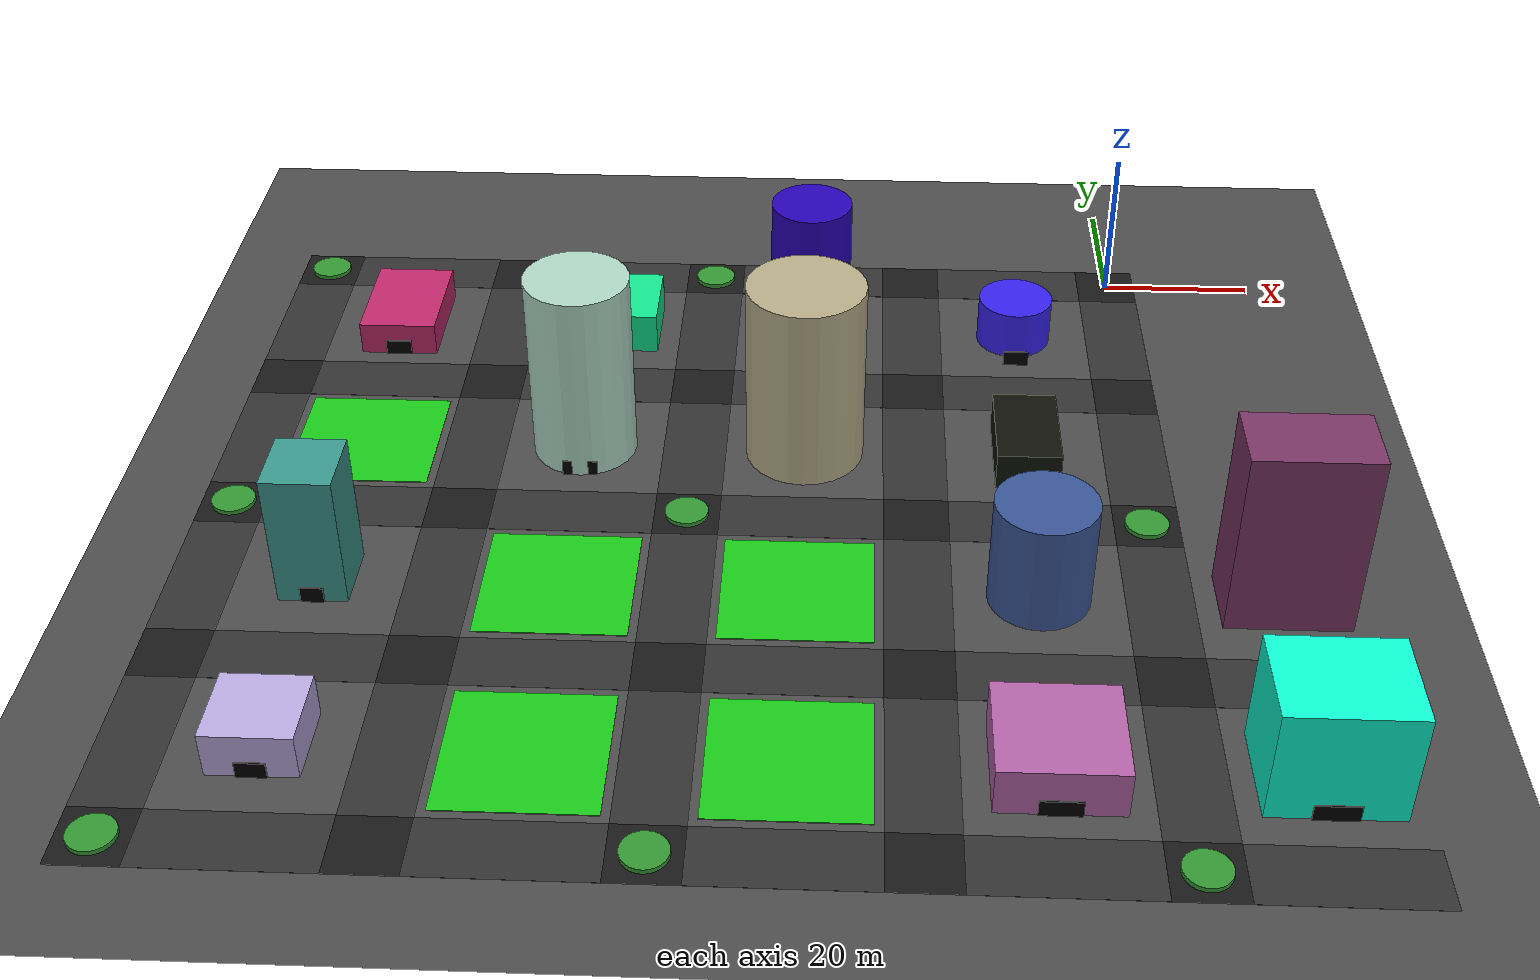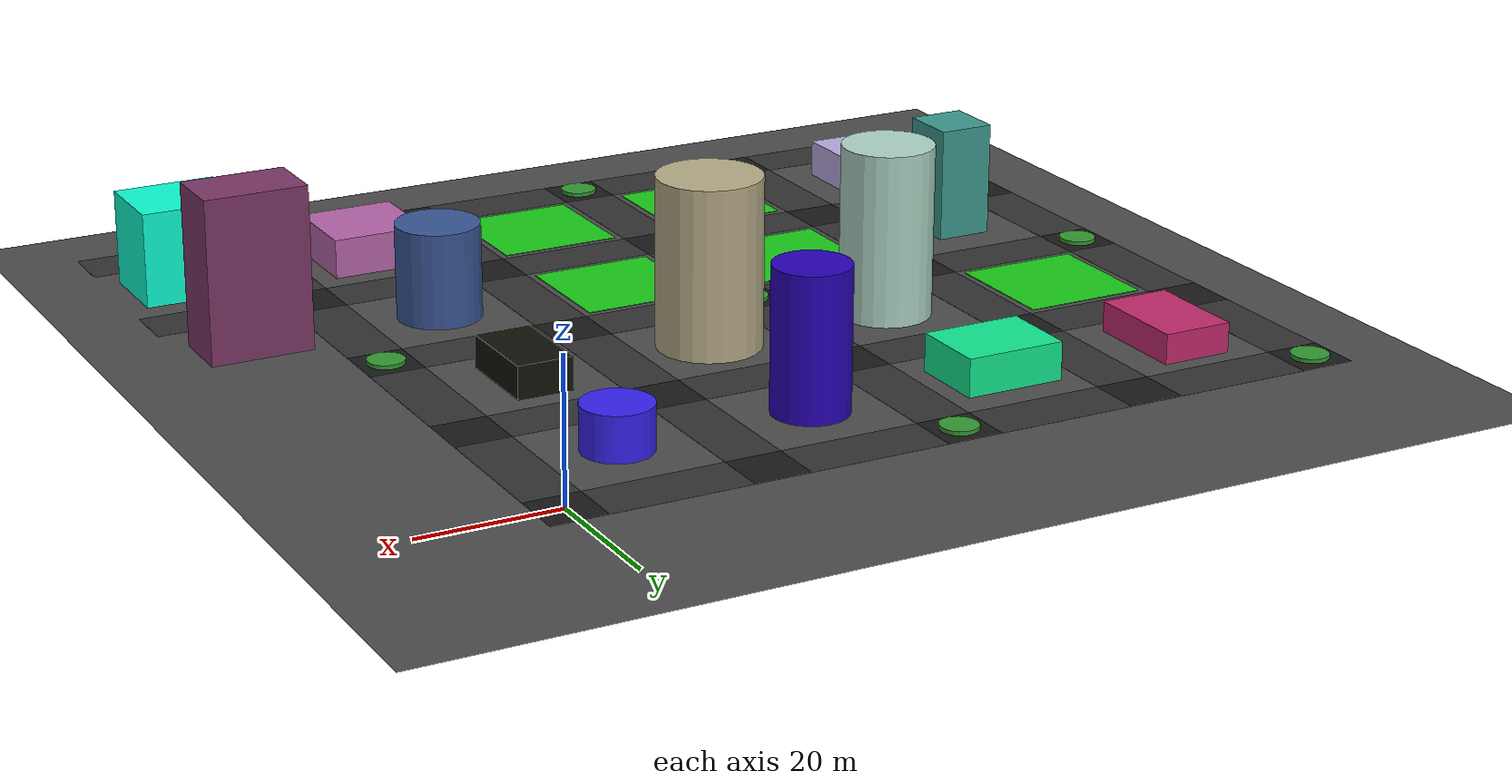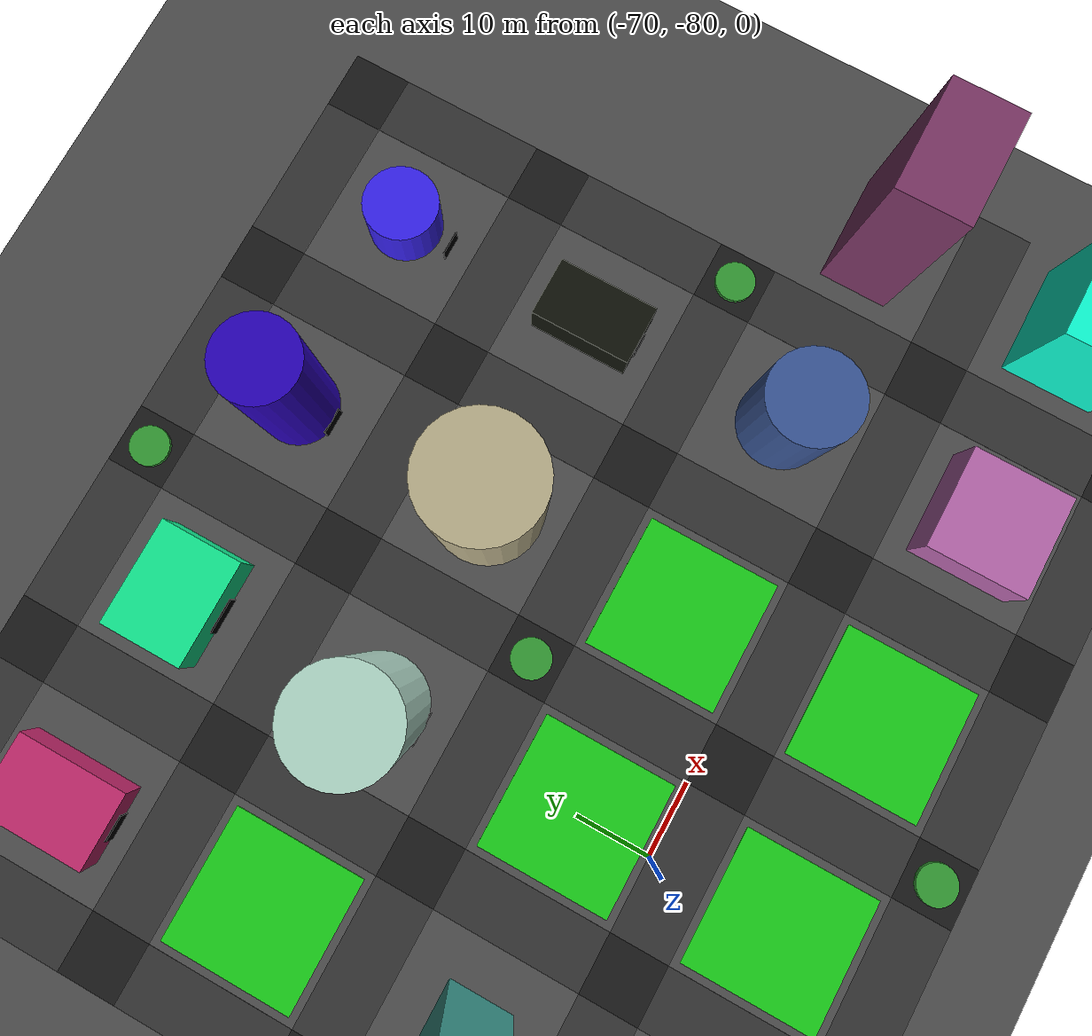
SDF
<sdf version="1.8">
 <world name="urban_city_rich">
  <model name="ground_plane">
   <static>true</static>
   <link name="link">
    <collision name="collision">
     <geometry><plane><normal>0 0 1</normal><size>200 200</size></plane></geometry>
     <surface><friction><ode><mu>100</mu><mu2>50</mu2></ode></friction></surface>
    </collision>
    <visual name="visual">
     <geometry><plane><normal>0 0 1</normal><size>200 200</size></plane></geometry>
     <material><ambient>0.3 0.3 0.3 1</ambient><diffuse>0.3 0.3 0.3 1</diffuse></material>
    </visual>
   </link>
  </model>
  <model name="road_inter_-4_-4">
   <static>true</static>
   <pose>-112.0 -112.0 0.01 0 0 0</pose>
   <link name="link">
    <visual name="vis">
     <geometry><box><size>8.0 8.0 0.02</size></box></geometry>
     <material><ambient>0.1 0.1 0.1 1</ambient><diffuse>0.1 0.1 0.1 1</diffuse></material>
    </visual>
   </link>
  </model>
  <model name="roundabout_-4_-4">
   <static>true</static>
   <pose>-112.0 -112.0 0.3 0 0 0</pose>
   <link name="link">
    <collision name="col">
     <geometry><cylinder><radius>2.6666666666666665</radius><length>0.6</length></cylinder></geometry>
    </collision>
    <visual name="vis">
     <geometry><cylinder><radius>2.6666666666666665</radius><length>0.6</length></cylinder></geometry>
     <material><ambient>0.2 0.6 0.2 1</ambient><diffuse>0.2 0.6 0.2 1</diffuse></material>
    </visual>
   </link>
  </model>
  <model name="road_h_-4_-4">
   <static>true</static>
   <pose>-98.0 -112.0 0.01 0 0 0</pose>
   <link name="link">
    <visual name="vis">
     <geometry><box><size>20.0 8.0 0.02</size></box></geometry>
     <material><ambient>0.2 0.2 0.2 1</ambient><diffuse>0.2 0.2 0.2 1</diffuse></material>
    </visual>
   </link>
  </model>
  <model name="road_v_-4_-4">
   <static>true</static>
   <pose>-112.0 -98.0 0.01 0 0 0</pose>
   <link name="link">
    <visual name="vis">
     <geometry><box><size>8.0 20.0 0.02</size></box></geometry>
     <material><ambient>0.2 0.2 0.2 1</ambient><diffuse>0.2 0.2 0.2 1</diffuse></material>
    </visual>
   </link>
  </model>
  <model name="bldg_0">
   <static>true</static>
   <pose>-98.0 -98.0 2.7501075522266696 0 0 0</pose>
   <link name="link">
    <collision name="col">
     <geometry><box><size>10.200234546952954 9.785685905190583 5.500215104453339</size></box></geometry>
    </collision>
    <visual name="vis">
     <geometry><box><size>10.200234546952954 9.785685905190583 5.500215104453339</size></box></geometry>
     <material>
      <ambient>0.7364712141640124 0.6766994874229113 0.8921795677048454 1</ambient>
      <diffuse>0.7364712141640124 0.6766994874229113 0.8921795677048454 1</diffuse>
     </material>
    </visual>
   </link>
  </model>
  <model name="door_0">
   <static>true</static>
   <pose>-98.0 -102.99284295259528 1.0 0 0 0</pose>
   <link name="link">
    <visual name="vis">
     <geometry><box><size>3.4000781823176514 0.2 2.0</size></box></geometry>
     <material><ambient>0 0 0 1</ambient><diffuse>0 0 0 1</diffuse></material>
    </visual>
   </link>
  </model>
  <model name="road_inter_-4_-3">
   <static>true</static>
   <pose>-112.0 -84.0 0.01 0 0 0</pose>
   <link name="link">
    <visual name="vis">
     <geometry><box><size>8.0 8.0 0.02</size></box></geometry>
     <material><ambient>0.1 0.1 0.1 1</ambient><diffuse>0.1 0.1 0.1 1</diffuse></material>
    </visual>
   </link>
  </model>
  <model name="road_h_-4_-3">
   <static>true</static>
   <pose>-98.0 -84.0 0.01 0 0 0</pose>
   <link name="link">
    <visual name="vis">
     <geometry><box><size>20.0 8.0 0.02</size></box></geometry>
     <material><ambient>0.2 0.2 0.2 1</ambient><diffuse>0.2 0.2 0.2 1</diffuse></material>
    </visual>
   </link>
  </model>
  <model name="road_v_-4_-3">
   <static>true</static>
   <pose>-112.0 -70.0 0.01 0 0 0</pose>
   <link name="link">
    <visual name="vis">
     <geometry><box><size>8.0 20.0 0.02</size></box></geometry>
     <material><ambient>0.2 0.2 0.2 1</ambient><diffuse>0.2 0.2 0.2 1</diffuse></material>
    </visual>
   </link>
  </model>
  <model name="bldg_1">
   <static>true</static>
   <pose>-98.0 -70.0 8.404925124490397 0 0 0</pose>
   <link name="link">
    <collision name="col">
     <geometry><box><size>8.254261435854268 8.74956191889274 16.809850248980794</size></box></geometry>
    </collision>
    <visual name="vis">
     <geometry><box><size>8.254261435854268 8.74956191889274 16.809850248980794</size></box></geometry>
     <material>
      <ambient>0.2326608933907396 0.6020187290499803 0.561245062938613 1</ambient>
      <diffuse>0.2326608933907396 0.6020187290499803 0.561245062938613 1</diffuse>
     </material>
    </visual>
   </link>
  </model>
  <model name="door_1">
   <static>true</static>
   <pose>-98.0 -74.47478095944636 1.0 0 0 0</pose>
   <link name="link">
    <visual name="vis">
     <geometry><box><size>2.751420478618089 0.2 2.0</size></box></geometry>
     <material><ambient>0 0 0 1</ambient><diffuse>0 0 0 1</diffuse></material>
    </visual>
   </link>
  </model>
  <model name="road_inter_-4_-2">
   <static>true</static>
   <pose>-112.0 -56.0 0.01 0 0 0</pose>
   <link name="link">
    <visual name="vis">
     <geometry><box><size>8.0 8.0 0.02</size></box></geometry>
     <material><ambient>0.1 0.1 0.1 1</ambient><diffuse>0.1 0.1 0.1 1</diffuse></material>
    </visual>
   </link>
  </model>
  <model name="roundabout_-4_-2">
   <static>true</static>
   <pose>-112.0 -56.0 0.3 0 0 0</pose>
   <link name="link">
    <collision name="col">
     <geometry><cylinder><radius>2.6666666666666665</radius><length>0.6</length></cylinder></geometry>
    </collision>
    <visual name="vis">
     <geometry><cylinder><radius>2.6666666666666665</radius><length>0.6</length></cylinder></geometry>
     <material><ambient>0.2 0.6 0.2 1</ambient><diffuse>0.2 0.6 0.2 1</diffuse></material>
    </visual>
   </link>
  </model>
  <model name="road_h_-4_-2">
   <static>true</static>
   <pose>-98.0 -56.0 0.01 0 0 0</pose>
   <link name="link">
    <visual name="vis">
     <geometry><box><size>20.0 8.0 0.02</size></box></geometry>
     <material><ambient>0.2 0.2 0.2 1</ambient><diffuse>0.2 0.2 0.2 1</diffuse></material>
    </visual>
   </link>
  </model>
  <model name="road_v_-4_-2">
   <static>true</static>
   <pose>-112.0 -42.0 0.01 0 0 0</pose>
   <link name="link">
    <visual name="vis">
     <geometry><box><size>8.0 20.0 0.02</size></box></geometry>
     <material><ambient>0.2 0.2 0.2 1</ambient><diffuse>0.2 0.2 0.2 1</diffuse></material>
    </visual>
   </link>
  </model>
  <model name="park_-4_-2">
   <static>true</static>
   <pose>-98.0 -42.0 0.05 0 0 0</pose>
   <link name="link">
    <visual name="vis">
     <geometry><box><size>18.0 18.0 0.1</size></box></geometry>
     <material><ambient>0.1 0.8 0.1 1</ambient><diffuse>0.1 0.8 0.1 1</diffuse></material>
    </visual>
   </link>
  </model>
  <model name="road_inter_-4_-1">
   <static>true</static>
   <pose>-112.0 -28.0 0.01 0 0 0</pose>
   <link name="link">
    <visual name="vis">
     <geometry><box><size>8.0 8.0 0.02</size></box></geometry>
     <material><ambient>0.1 0.1 0.1 1</ambient><diffuse>0.1 0.1 0.1 1</diffuse></material>
    </visual>
   </link>
  </model>
  <model name="road_h_-4_-1">
   <static>true</static>
   <pose>-98.0 -28.0 0.01 0 0 0</pose>
   <link name="link">
    <visual name="vis">
     <geometry><box><size>20.0 8.0 0.02</size></box></geometry>
     <material><ambient>0.2 0.2 0.2 1</ambient><diffuse>0.2 0.2 0.2 1</diffuse></material>
    </visual>
   </link>
  </model>
  <model name="road_v_-4_-1">
   <static>true</static>
   <pose>-112.0 -14.0 0.01 0 0 0</pose>
   <link name="link">
    <visual name="vis">
     <geometry><box><size>8.0 20.0 0.02</size></box></geometry>
     <material><ambient>0.2 0.2 0.2 1</ambient><diffuse>0.2 0.2 0.2 1</diffuse></material>
    </visual>
   </link>
  </model>
  <model name="bldg_2">
   <static>true</static>
   <pose>-98.0 -14.0 2.1738135694257803 0 0 0</pose>
   <link name="link">
    <collision name="col">
     <geometry><box><size>10.225525665845302 14.954402566343472 4.347627138851561</size></box></geometry>
    </collision>
    <visual name="vis">
     <geometry><box><size>10.225525665845302 14.954402566343472 4.347627138851561</size></box></geometry>
     <material>
      <ambient>0.7588073671297673 0.15965931637689013 0.42261439815350255 1</ambient>
      <diffuse>0.7588073671297673 0.15965931637689013 0.42261439815350255 1</diffuse>
     </material>
    </visual>
   </link>
  </model>
  <model name="door_2">
   <static>true</static>
   <pose>-98.0 -21.57720128317174 1.0 0 0 0</pose>
   <link name="link">
    <visual name="vis">
     <geometry><box><size>3.408508555281767 0.2 2.0</size></box></geometry>
     <material><ambient>0 0 0 1</ambient><diffuse>0 0 0 1</diffuse></material>
    </visual>
   </link>
  </model>
  <model name="road_inter_-4_0">
   <static>true</static>
   <pose>-112.0 0.0 0.01 0 0 0</pose>
   <link name="link">
    <visual name="vis">
     <geometry><box><size>8.0 8.0 0.02</size></box></geometry>
     <material><ambient>0.1 0.1 0.1 1</ambient><diffuse>0.1 0.1 0.1 1</diffuse></material>
    </visual>
   </link>
  </model>
  <model name="roundabout_-4_0">
   <static>true</static>
   <pose>-112.0 0.0 0.3 0 0 0</pose>
   <link name="link">
    <collision name="col">
     <geometry><cylinder><radius>2.6666666666666665</radius><length>0.6</length></cylinder></geometry>
    </collision>
    <visual name="vis">
     <geometry><cylinder><radius>2.6666666666666665</radius><length>0.6</length></cylinder></geometry>
     <material><ambient>0.2 0.6 0.2 1</ambient><diffuse>0.2 0.6 0.2 1</diffuse></material>
    </visual>
   </link>
  </model>
  <model name="road_h_-4_0">
   <static>true</static>
   <pose>-98.0 0.0 0.01 0 0 0</pose>
   <link name="link">
    <visual name="vis">
     <geometry><box><size>20.0 8.0 0.02</size></box></geometry>
     <material><ambient>0.2 0.2 0.2 1</ambient><diffuse>0.2 0.2 0.2 1</diffuse></material>
    </visual>
   </link>
  </model>
  <model name="road_inter_-3_-4">
   <static>true</static>
   <pose>-84.0 -112.0 0.01 0 0 0</pose>
   <link name="link">
    <visual name="vis">
     <geometry><box><size>8.0 8.0 0.02</size></box></geometry>
     <material><ambient>0.1 0.1 0.1 1</ambient><diffuse>0.1 0.1 0.1 1</diffuse></material>
    </visual>
   </link>
  </model>
  <model name="road_h_-3_-4">
   <static>true</static>
   <pose>-70.0 -112.0 0.01 0 0 0</pose>
   <link name="link">
    <visual name="vis">
     <geometry><box><size>20.0 8.0 0.02</size></box></geometry>
     <material><ambient>0.2 0.2 0.2 1</ambient><diffuse>0.2 0.2 0.2 1</diffuse></material>
    </visual>
   </link>
  </model>
  <model name="road_v_-3_-4">
   <static>true</static>
   <pose>-84.0 -98.0 0.01 0 0 0</pose>
   <link name="link">
    <visual name="vis">
     <geometry><box><size>8.0 20.0 0.02</size></box></geometry>
     <material><ambient>0.2 0.2 0.2 1</ambient><diffuse>0.2 0.2 0.2 1</diffuse></material>
    </visual>
   </link>
  </model>
  <model name="park_-3_-4">
   <static>true</static>
   <pose>-70.0 -98.0 0.05 0 0 0</pose>
   <link name="link">
    <visual name="vis">
     <geometry><box><size>18.0 18.0 0.1</size></box></geometry>
     <material><ambient>0.1 0.8 0.1 1</ambient><diffuse>0.1 0.8 0.1 1</diffuse></material>
    </visual>
   </link>
  </model>
  <model name="road_inter_-3_-3">
   <static>true</static>
   <pose>-84.0 -84.0 0.01 0 0 0</pose>
   <link name="link">
    <visual name="vis">
     <geometry><box><size>8.0 8.0 0.02</size></box></geometry>
     <material><ambient>0.1 0.1 0.1 1</ambient><diffuse>0.1 0.1 0.1 1</diffuse></material>
    </visual>
   </link>
  </model>
  <model name="road_h_-3_-3">
   <static>true</static>
   <pose>-70.0 -84.0 0.01 0 0 0</pose>
   <link name="link">
    <visual name="vis">
     <geometry><box><size>20.0 8.0 0.02</size></box></geometry>
     <material><ambient>0.2 0.2 0.2 1</ambient><diffuse>0.2 0.2 0.2 1</diffuse></material>
    </visual>
   </link>
  </model>
  <model name="road_v_-3_-3">
   <static>true</static>
   <pose>-84.0 -70.0 0.01 0 0 0</pose>
   <link name="link">
    <visual name="vis">
     <geometry><box><size>8.0 20.0 0.02</size></box></geometry>
     <material><ambient>0.2 0.2 0.2 1</ambient><diffuse>0.2 0.2 0.2 1</diffuse></material>
    </visual>
   </link>
  </model>
  <model name="park_-3_-3">
   <static>true</static>
   <pose>-70.0 -70.0 0.05 0 0 0</pose>
   <link name="link">
    <visual name="vis">
     <geometry><box><size>18.0 18.0 0.1</size></box></geometry>
     <material><ambient>0.1 0.8 0.1 1</ambient><diffuse>0.1 0.8 0.1 1</diffuse></material>
    </visual>
   </link>
  </model>
  <model name="road_inter_-3_-2">
   <static>true</static>
   <pose>-84.0 -56.0 0.01 0 0 0</pose>
   <link name="link">
    <visual name="vis">
     <geometry><box><size>8.0 8.0 0.02</size></box></geometry>
     <material><ambient>0.1 0.1 0.1 1</ambient><diffuse>0.1 0.1 0.1 1</diffuse></material>
    </visual>
   </link>
  </model>
  <model name="road_h_-3_-2">
   <static>true</static>
   <pose>-70.0 -56.0 0.01 0 0 0</pose>
   <link name="link">
    <visual name="vis">
     <geometry><box><size>20.0 8.0 0.02</size></box></geometry>
     <material><ambient>0.2 0.2 0.2 1</ambient><diffuse>0.2 0.2 0.2 1</diffuse></material>
    </visual>
   </link>
  </model>
  <model name="road_v_-3_-2">
   <static>true</static>
   <pose>-84.0 -42.0 0.01 0 0 0</pose>
   <link name="link">
    <visual name="vis">
     <geometry><box><size>8.0 20.0 0.02</size></box></geometry>
     <material><ambient>0.2 0.2 0.2 1</ambient><diffuse>0.2 0.2 0.2 1</diffuse></material>
    </visual>
   </link>
  </model>
  <model name="bldg_8">
   <static>true</static>
   <pose>-70.0 -42.0 12.395233506365953 0 0 0</pose>
   <link name="link">
    <collision name="col">
     <geometry>
      <cylinder><radius>6.559999039416372</radius><length>24.790467012731906</length></cylinder>
     </geometry>
    </collision>
    <visual name="vis">
     <geometry>
      <cylinder><radius>6.559999039416372</radius><length>24.790467012731906</length></cylinder>
     </geometry>
     <material>
      <ambient>0.6846142509898746 0.8428519201898096 0.7759999115462448 1</ambient>
      <diffuse>0.6846142509898746 0.8428519201898096 0.7759999115462448 1</diffuse>
     </material>
    </visual>
   </link>
  </model>
  <model name="door_8">
   <static>true</static>
   <pose>-70.0 -48.32779897509859 1.0 0 0 0</pose>
   <link name="link">
    <visual name="vis">
     <geometry><box><size>4.373332692944248 0.2 2.0</size></box></geometry>
     <material><ambient>0 0 0 1</ambient><diffuse>0 0 0 1</diffuse></material>
    </visual>
   </link>
  </model>
  <model name="road_inter_-3_-1">
   <static>true</static>
   <pose>-84.0 -28.0 0.01 0 0 0</pose>
   <link name="link">
    <visual name="vis">
     <geometry><box><size>8.0 8.0 0.02</size></box></geometry>
     <material><ambient>0.1 0.1 0.1 1</ambient><diffuse>0.1 0.1 0.1 1</diffuse></material>
    </visual>
   </link>
  </model>
  <model name="road_h_-3_-1">
   <static>true</static>
   <pose>-70.0 -28.0 0.01 0 0 0</pose>
   <link name="link">
    <visual name="vis">
     <geometry><box><size>20.0 8.0 0.02</size></box></geometry>
     <material><ambient>0.2 0.2 0.2 1</ambient><diffuse>0.2 0.2 0.2 1</diffuse></material>
    </visual>
   </link>
  </model>
  <model name="road_v_-3_-1">
   <static>true</static>
   <pose>-84.0 -14.0 0.01 0 0 0</pose>
   <link name="link">
    <visual name="vis">
     <geometry><box><size>8.0 20.0 0.02</size></box></geometry>
     <material><ambient>0.2 0.2 0.2 1</ambient><diffuse>0.2 0.2 0.2 1</diffuse></material>
    </visual>
   </link>
  </model>
  <model name="bldg_9">
   <static>true</static>
   <pose>-70.0 -14.0 2.7327038910102126 0 0 0</pose>
   <link name="link">
    <collision name="col">
     <geometry><box><size>14.440366406169716 11.209318296178632 5.465407782020425</size></box></geometry>
    </collision>
    <visual name="vis">
     <geometry><box><size>14.440366406169716 11.209318296178632 5.465407782020425</size></box></geometry>
     <material>
      <ambient>0.06618860521154724 0.913136124185545 0.5671800514785023 1</ambient>
      <diffuse>0.06618860521154724 0.913136124185545 0.5671800514785023 1</diffuse>
     </material>
    </visual>
   </link>
  </model>
  <model name="door_9">
   <static>true</static>
   <pose>-70.0 -19.704659148089316 1.0 0 0 0</pose>
   <link name="link">
    <visual name="vis">
     <geometry><box><size>4.813455468723238 0.2 2.0</size></box></geometry>
     <material><ambient>0 0 0 1</ambient><diffuse>0 0 0 1</diffuse></material>
    </visual>
   </link>
  </model>
  <model name="road_inter_-3_0">
   <static>true</static>
   <pose>-84.0 0.0 0.01 0 0 0</pose>
   <link name="link">
    <visual name="vis">
     <geometry><box><size>8.0 8.0 0.02</size></box></geometry>
     <material><ambient>0.1 0.1 0.1 1</ambient><diffuse>0.1 0.1 0.1 1</diffuse></material>
    </visual>
   </link>
  </model>
  <model name="road_h_-3_0">
   <static>true</static>
   <pose>-70.0 0.0 0.01 0 0 0</pose>
   <link name="link">
    <visual name="vis">
     <geometry><box><size>20.0 8.0 0.02</size></box></geometry>
     <material><ambient>0.2 0.2 0.2 1</ambient><diffuse>0.2 0.2 0.2 1</diffuse></material>
    </visual>
   </link>
  </model>
  <model name="road_inter_-2_-4">
   <static>true</static>
   <pose>-56.0 -112.0 0.01 0 0 0</pose>
   <link name="link">
    <visual name="vis">
     <geometry><box><size>8.0 8.0 0.02</size></box></geometry>
     <material><ambient>0.1 0.1 0.1 1</ambient><diffuse>0.1 0.1 0.1 1</diffuse></material>
    </visual>
   </link>
  </model>
  <model name="roundabout_-2_-4">
   <static>true</static>
   <pose>-56.0 -112.0 0.3 0 0 0</pose>
   <link name="link">
    <collision name="col">
     <geometry><cylinder><radius>2.6666666666666665</radius><length>0.6</length></cylinder></geometry>
    </collision>
    <visual name="vis">
     <geometry><cylinder><radius>2.6666666666666665</radius><length>0.6</length></cylinder></geometry>
     <material><ambient>0.2 0.6 0.2 1</ambient><diffuse>0.2 0.6 0.2 1</diffuse></material>
    </visual>
   </link>
  </model>
  <model name="road_h_-2_-4">
   <static>true</static>
   <pose>-42.0 -112.0 0.01 0 0 0</pose>
   <link name="link">
    <visual name="vis">
     <geometry><box><size>20.0 8.0 0.02</size></box></geometry>
     <material><ambient>0.2 0.2 0.2 1</ambient><diffuse>0.2 0.2 0.2 1</diffuse></material>
    </visual>
   </link>
  </model>
  <model name="road_v_-2_-4">
   <static>true</static>
   <pose>-56.0 -98.0 0.01 0 0 0</pose>
   <link name="link">
    <visual name="vis">
     <geometry><box><size>8.0 20.0 0.02</size></box></geometry>
     <material><ambient>0.2 0.2 0.2 1</ambient><diffuse>0.2 0.2 0.2 1</diffuse></material>
    </visual>
   </link>
  </model>
  <model name="park_-2_-4">
   <static>true</static>
   <pose>-42.0 -98.0 0.05 0 0 0</pose>
   <link name="link">
    <visual name="vis">
     <geometry><box><size>18.0 18.0 0.1</size></box></geometry>
     <material><ambient>0.1 0.8 0.1 1</ambient><diffuse>0.1 0.8 0.1 1</diffuse></material>
    </visual>
   </link>
  </model>
  <model name="road_inter_-2_-3">
   <static>true</static>
   <pose>-56.0 -84.0 0.01 0 0 0</pose>
   <link name="link">
    <visual name="vis">
     <geometry><box><size>8.0 8.0 0.02</size></box></geometry>
     <material><ambient>0.1 0.1 0.1 1</ambient><diffuse>0.1 0.1 0.1 1</diffuse></material>
    </visual>
   </link>
  </model>
  <model name="road_h_-2_-3">
   <static>true</static>
   <pose>-42.0 -84.0 0.01 0 0 0</pose>
   <link name="link">
    <visual name="vis">
     <geometry><box><size>20.0 8.0 0.02</size></box></geometry>
     <material><ambient>0.2 0.2 0.2 1</ambient><diffuse>0.2 0.2 0.2 1</diffuse></material>
    </visual>
   </link>
  </model>
  <model name="road_v_-2_-3">
   <static>true</static>
   <pose>-56.0 -70.0 0.01 0 0 0</pose>
   <link name="link">
    <visual name="vis">
     <geometry><box><size>8.0 20.0 0.02</size></box></geometry>
     <material><ambient>0.2 0.2 0.2 1</ambient><diffuse>0.2 0.2 0.2 1</diffuse></material>
    </visual>
   </link>
  </model>
  <model name="park_-2_-3">
   <static>true</static>
   <pose>-42.0 -70.0 0.05 0 0 0</pose>
   <link name="link">
    <visual name="vis">
     <geometry><box><size>18.0 18.0 0.1</size></box></geometry>
     <material><ambient>0.1 0.8 0.1 1</ambient><diffuse>0.1 0.8 0.1 1</diffuse></material>
    </visual>
   </link>
  </model>
  <model name="road_inter_-2_-2">
   <static>true</static>
   <pose>-56.0 -56.0 0.01 0 0 0</pose>
   <link name="link">
    <visual name="vis">
     <geometry><box><size>8.0 8.0 0.02</size></box></geometry>
     <material><ambient>0.1 0.1 0.1 1</ambient><diffuse>0.1 0.1 0.1 1</diffuse></material>
    </visual>
   </link>
  </model>
  <model name="roundabout_-2_-2">
   <static>true</static>
   <pose>-56.0 -56.0 0.3 0 0 0</pose>
   <link name="link">
    <collision name="col">
     <geometry><cylinder><radius>2.6666666666666665</radius><length>0.6</length></cylinder></geometry>
    </collision>
    <visual name="vis">
     <geometry><cylinder><radius>2.6666666666666665</radius><length>0.6</length></cylinder></geometry>
     <material><ambient>0.2 0.6 0.2 1</ambient><diffuse>0.2 0.6 0.2 1</diffuse></material>
    </visual>
   </link>
  </model>
  <model name="road_h_-2_-2">
   <static>true</static>
   <pose>-42.0 -56.0 0.01 0 0 0</pose>
   <link name="link">
    <visual name="vis">
     <geometry><box><size>20.0 8.0 0.02</size></box></geometry>
     <material><ambient>0.2 0.2 0.2 1</ambient><diffuse>0.2 0.2 0.2 1</diffuse></material>
    </visual>
   </link>
  </model>
  <model name="road_v_-2_-2">
   <static>true</static>
   <pose>-56.0 -42.0 0.01 0 0 0</pose>
   <link name="link">
    <visual name="vis">
     <geometry><box><size>8.0 20.0 0.02</size></box></geometry>
     <material><ambient>0.2 0.2 0.2 1</ambient><diffuse>0.2 0.2 0.2 1</diffuse></material>
    </visual>
   </link>
  </model>
  <model name="bldg_13">
   <static>true</static>
   <pose>-42.0 -42.0 12.210783776136182 0 0 0</pose>
   <link name="link">
    <collision name="col">
     <geometry>
      <cylinder><radius>7.443118808937992</radius><length>24.421567552272364</length></cylinder>
     </geometry>
    </collision>
    <visual name="vis">
     <geometry>
      <cylinder><radius>7.443118808937992</radius><length>24.421567552272364</length></cylinder>
     </geometry>
     <material>
      <ambient>0.7207218193601946 0.6817103690265748 0.5369703304087952 1</ambient>
      <diffuse>0.7207218193601946 0.6817103690265748 0.5369703304087952 1</diffuse>
     </material>
    </visual>
   </link>
  </model>
  <model name="door_13">
   <static>true</static>
   <pose>-42.0 -46.14592408777128 1.0 0 0 0</pose>
   <link name="link">
    <visual name="vis">
     <geometry><box><size>4.962079205958662 0.2 2.0</size></box></geometry>
     <material><ambient>0 0 0 1</ambient><diffuse>0 0 0 1</diffuse></material>
    </visual>
   </link>
  </model>
  <model name="road_inter_-2_-1">
   <static>true</static>
   <pose>-56.0 -28.0 0.01 0 0 0</pose>
   <link name="link">
    <visual name="vis">
     <geometry><box><size>8.0 8.0 0.02</size></box></geometry>
     <material><ambient>0.1 0.1 0.1 1</ambient><diffuse>0.1 0.1 0.1 1</diffuse></material>
    </visual>
   </link>
  </model>
  <model name="road_h_-2_-1">
   <static>true</static>
   <pose>-42.0 -28.0 0.01 0 0 0</pose>
   <link name="link">
    <visual name="vis">
     <geometry><box><size>20.0 8.0 0.02</size></box></geometry>
     <material><ambient>0.2 0.2 0.2 1</ambient><diffuse>0.2 0.2 0.2 1</diffuse></material>
    </visual>
   </link>
  </model>
  <model name="road_v_-2_-1">
   <static>true</static>
   <pose>-56.0 -14.0 0.01 0 0 0</pose>
   <link name="link">
    <visual name="vis">
     <geometry><box><size>8.0 20.0 0.02</size></box></geometry>
     <material><ambient>0.2 0.2 0.2 1</ambient><diffuse>0.2 0.2 0.2 1</diffuse></material>
    </visual>
   </link>
  </model>
  <model name="bldg_14">
   <static>true</static>
   <pose>-42.0 -14.0 10.185987326574459 0 0 0</pose>
   <link name="link">
    <collision name="col">
     <geometry>
      <cylinder><radius>5.360701892124181</radius><length>20.371974653148918</length></cylinder>
     </geometry>
    </collision>
    <visual name="vis">
     <geometry>
      <cylinder><radius>5.360701892124181</radius><length>20.371974653148918</length></cylinder>
     </geometry>
     <material>
      <ambient>0.15815775434466972 0.0032453161017292897 0.7220920613099108 1</ambient>
      <diffuse>0.15815775434466972 0.0032453161017292897 0.7220920613099108 1</diffuse>
     </material>
    </visual>
   </link>
  </model>
  <model name="door_14">
   <static>true</static>
   <pose>-42.0 -19.274000514589705 1.0 0 0 0</pose>
   <link name="link">
    <visual name="vis">
     <geometry><box><size>3.5738012614161208 0.2 2.0</size></box></geometry>
     <material><ambient>0 0 0 1</ambient><diffuse>0 0 0 1</diffuse></material>
    </visual>
   </link>
  </model>
  <model name="road_inter_-2_0">
   <static>true</static>
   <pose>-56.0 0.0 0.01 0 0 0</pose>
   <link name="link">
    <visual name="vis">
     <geometry><box><size>8.0 8.0 0.02</size></box></geometry>
     <material><ambient>0.1 0.1 0.1 1</ambient><diffuse>0.1 0.1 0.1 1</diffuse></material>
    </visual>
   </link>
  </model>
  <model name="roundabout_-2_0">
   <static>true</static>
   <pose>-56.0 0.0 0.3 0 0 0</pose>
   <link name="link">
    <collision name="col">
     <geometry><cylinder><radius>2.6666666666666665</radius><length>0.6</length></cylinder></geometry>
    </collision>
    <visual name="vis">
     <geometry><cylinder><radius>2.6666666666666665</radius><length>0.6</length></cylinder></geometry>
     <material><ambient>0.2 0.6 0.2 1</ambient><diffuse>0.2 0.6 0.2 1</diffuse></material>
    </visual>
   </link>
  </model>
  <model name="road_h_-2_0">
   <static>true</static>
   <pose>-42.0 0.0 0.01 0 0 0</pose>
   <link name="link">
    <visual name="vis">
     <geometry><box><size>20.0 8.0 0.02</size></box></geometry>
     <material><ambient>0.2 0.2 0.2 1</ambient><diffuse>0.2 0.2 0.2 1</diffuse></material>
    </visual>
   </link>
  </model>
  <model name="road_inter_-1_-4">
   <static>true</static>
   <pose>-28.0 -112.0 0.01 0 0 0</pose>
   <link name="link">
    <visual name="vis">
     <geometry><box><size>8.0 8.0 0.02</size></box></geometry>
     <material><ambient>0.1 0.1 0.1 1</ambient><diffuse>0.1 0.1 0.1 1</diffuse></material>
    </visual>
   </link>
  </model>
  <model name="road_h_-1_-4">
   <static>true</static>
   <pose>-14.0 -112.0 0.01 0 0 0</pose>
   <link name="link">
    <visual name="vis">
     <geometry><box><size>20.0 8.0 0.02</size></box></geometry>
     <material><ambient>0.2 0.2 0.2 1</ambient><diffuse>0.2 0.2 0.2 1</diffuse></material>
    </visual>
   </link>
  </model>
  <model name="road_v_-1_-4">
   <static>true</static>
   <pose>-28.0 -98.0 0.01 0 0 0</pose>
   <link name="link">
    <visual name="vis">
     <geometry><box><size>8.0 20.0 0.02</size></box></geometry>
     <material><ambient>0.2 0.2 0.2 1</ambient><diffuse>0.2 0.2 0.2 1</diffuse></material>
    </visual>
   </link>
  </model>
  <model name="bldg_20">
   <static>true</static>
   <pose>-14.0 -98.0 2.893370239503265 0 0 0</pose>
   <link name="link">
    <collision name="col">
     <geometry><box><size>14.042121573086444 13.518941056796972 5.78674047900653</size></box></geometry>
    </collision>
    <visual name="vis">
     <geometry><box><size>14.042121573086444 13.518941056796972 5.78674047900653</size></box></geometry>
     <material>
      <ambient>0.7129489728191218 0.39899229999742913 0.6716869596382831 1</ambient>
      <diffuse>0.7129489728191218 0.39899229999742913 0.6716869596382831 1</diffuse>
     </material>
    </visual>
   </link>
  </model>
  <model name="door_20">
   <static>true</static>
   <pose>-14.0 -104.85947052839848 1.0 0 0 0</pose>
   <link name="link">
    <visual name="vis">
     <geometry><box><size>4.680707191028815 0.2 2.0</size></box></geometry>
     <material><ambient>0 0 0 1</ambient><diffuse>0 0 0 1</diffuse></material>
    </visual>
   </link>
  </model>
  <model name="road_inter_-1_-3">
   <static>true</static>
   <pose>-28.0 -84.0 0.01 0 0 0</pose>
   <link name="link">
    <visual name="vis">
     <geometry><box><size>8.0 8.0 0.02</size></box></geometry>
     <material><ambient>0.1 0.1 0.1 1</ambient><diffuse>0.1 0.1 0.1 1</diffuse></material>
    </visual>
   </link>
  </model>
  <model name="road_h_-1_-3">
   <static>true</static>
   <pose>-14.0 -84.0 0.01 0 0 0</pose>
   <link name="link">
    <visual name="vis">
     <geometry><box><size>20.0 8.0 0.02</size></box></geometry>
     <material><ambient>0.2 0.2 0.2 1</ambient><diffuse>0.2 0.2 0.2 1</diffuse></material>
    </visual>
   </link>
  </model>
  <model name="road_v_-1_-3">
   <static>true</static>
   <pose>-28.0 -70.0 0.01 0 0 0</pose>
   <link name="link">
    <visual name="vis">
     <geometry><box><size>8.0 20.0 0.02</size></box></geometry>
     <material><ambient>0.2 0.2 0.2 1</ambient><diffuse>0.2 0.2 0.2 1</diffuse></material>
    </visual>
   </link>
  </model>
  <model name="bldg_21">
   <static>true</static>
   <pose>-14.0 -70.0 6.881000839145041 0 0 0</pose>
   <link name="link">
    <collision name="col">
     <geometry>
      <cylinder><radius>6.0703033641423625</radius><length>13.762001678290082</length></cylinder>
     </geometry>
    </collision>
    <visual name="vis">
     <geometry>
      <cylinder><radius>6.0703033641423625</radius><length>13.762001678290082</length></cylinder>
     </geometry>
     <material>
      <ambient>0.22469733703155736 0.33808556214745533 0.5883087184572333 1</ambient>
      <diffuse>0.22469733703155736 0.33808556214745533 0.5883087184572333 1</diffuse>
     </material>
    </visual>
   </link>
  </model>
  <model name="door_21">
   <static>true</static>
   <pose>-14.0 -74.58401678347306 1.0 0 0 0</pose>
   <link name="link">
    <visual name="vis">
     <geometry><box><size>4.046868909428242 0.2 2.0</size></box></geometry>
     <material><ambient>0 0 0 1</ambient><diffuse>0 0 0 1</diffuse></material>
    </visual>
   </link>
  </model>
  <model name="road_inter_-1_-2">
   <static>true</static>
   <pose>-28.0 -56.0 0.01 0 0 0</pose>
   <link name="link">
    <visual name="vis">
     <geometry><box><size>8.0 8.0 0.02</size></box></geometry>
     <material><ambient>0.1 0.1 0.1 1</ambient><diffuse>0.1 0.1 0.1 1</diffuse></material>
    </visual>
   </link>
  </model>
  <model name="road_h_-1_-2">
   <static>true</static>
   <pose>-14.0 -56.0 0.01 0 0 0</pose>
   <link name="link">
    <visual name="vis">
     <geometry><box><size>20.0 8.0 0.02</size></box></geometry>
     <material><ambient>0.2 0.2 0.2 1</ambient><diffuse>0.2 0.2 0.2 1</diffuse></material>
    </visual>
   </link>
  </model>
  <model name="road_v_-1_-2">
   <static>true</static>
   <pose>-28.0 -42.0 0.01 0 0 0</pose>
   <link name="link">
    <visual name="vis">
     <geometry><box><size>8.0 20.0 0.02</size></box></geometry>
     <material><ambient>0.2 0.2 0.2 1</ambient><diffuse>0.2 0.2 0.2 1</diffuse></material>
    </visual>
   </link>
  </model>
  <model name="bldg_22">
   <static>true</static>
   <pose>-14.0 -42.0 2.3826601716155267 0 0 0</pose>
   <link name="link">
    <collision name="col">
     <geometry><box><size>8.057526711880747 13.662727572387633 4.765320343231053</size></box></geometry>
    </collision>
    <visual name="vis">
     <geometry><box><size>8.057526711880747 13.662727572387633 4.765320343231053</size></box></geometry>
     <material>
      <ambient>0.0588737668763234 0.0674003281103075 0.031412958053018136 1</ambient>
      <diffuse>0.0588737668763234 0.0674003281103075 0.031412958053018136 1</diffuse>
     </material>
    </visual>
   </link>
  </model>
  <model name="door_22">
   <static>true</static>
   <pose>-14.0 -48.93136378619382 1.0 0 0 0</pose>
   <link name="link">
    <visual name="vis">
     <geometry><box><size>2.6858422372935826 0.2 2.0</size></box></geometry>
     <material><ambient>0 0 0 1</ambient><diffuse>0 0 0 1</diffuse></material>
    </visual>
   </link>
  </model>
  <model name="road_inter_-1_-1">
   <static>true</static>
   <pose>-28.0 -28.0 0.01 0 0 0</pose>
   <link name="link">
    <visual name="vis">
     <geometry><box><size>8.0 8.0 0.02</size></box></geometry>
     <material><ambient>0.1 0.1 0.1 1</ambient><diffuse>0.1 0.1 0.1 1</diffuse></material>
    </visual>
   </link>
  </model>
  <model name="road_h_-1_-1">
   <static>true</static>
   <pose>-14.0 -28.0 0.01 0 0 0</pose>
   <link name="link">
    <visual name="vis">
     <geometry><box><size>20.0 8.0 0.02</size></box></geometry>
     <material><ambient>0.2 0.2 0.2 1</ambient><diffuse>0.2 0.2 0.2 1</diffuse></material>
    </visual>
   </link>
  </model>
  <model name="road_v_-1_-1">
   <static>true</static>
   <pose>-28.0 -14.0 0.01 0 0 0</pose>
   <link name="link">
    <visual name="vis">
     <geometry><box><size>8.0 20.0 0.02</size></box></geometry>
     <material><ambient>0.2 0.2 0.2 1</ambient><diffuse>0.2 0.2 0.2 1</diffuse></material>
    </visual>
   </link>
  </model>
  <model name="bldg_23">
   <static>true</static>
   <pose>-14.0 -14.0 3.208573498886534 0 0 0</pose>
   <link name="link">
    <collision name="col">
     <geometry><cylinder><radius>4.952018537475981</radius><length>6.417146997773068</length></cylinder></geometry>
    </collision>
    <visual name="vis">
     <geometry><cylinder><radius>4.952018537475981</radius><length>6.417146997773068</length></cylinder></geometry>
     <material>
      <ambient>0.2142368073704386 0.132311848725025 0.935514240580671 1</ambient>
      <diffuse>0.2142368073704386 0.132311848725025 0.935514240580671 1</diffuse>
     </material>
    </visual>
   </link>
  </model>
  <model name="door_23">
   <static>true</static>
   <pose>-14.0 -20.775911113185124 1.0 0 0 0</pose>
   <link name="link">
    <visual name="vis">
     <geometry><box><size>3.301345691650654 0.2 2.0</size></box></geometry>
     <material><ambient>0 0 0 1</ambient><diffuse>0 0 0 1</diffuse></material>
    </visual>
   </link>
  </model>
  <model name="road_inter_-1_0">
   <static>true</static>
   <pose>-28.0 0.0 0.01 0 0 0</pose>
   <link name="link">
    <visual name="vis">
     <geometry><box><size>8.0 8.0 0.02</size></box></geometry>
     <material><ambient>0.1 0.1 0.1 1</ambient><diffuse>0.1 0.1 0.1 1</diffuse></material>
    </visual>
   </link>
  </model>
  <model name="road_h_-1_0">
   <static>true</static>
   <pose>-14.0 0.0 0.01 0 0 0</pose>
   <link name="link">
    <visual name="vis">
     <geometry><box><size>20.0 8.0 0.02</size></box></geometry>
     <material><ambient>0.2 0.2 0.2 1</ambient><diffuse>0.2 0.2 0.2 1</diffuse></material>
    </visual>
   </link>
  </model>
  <model name="road_inter_0_-4">
   <static>true</static>
   <pose>0.0 -112.0 0.01 0 0 0</pose>
   <link name="link">
    <visual name="vis">
     <geometry><box><size>8.0 8.0 0.02</size></box></geometry>
     <material><ambient>0.1 0.1 0.1 1</ambient><diffuse>0.1 0.1 0.1 1</diffuse></material>
    </visual>
   </link>
  </model>
  <model name="roundabout_0_-4">
   <static>true</static>
   <pose>0.0 -112.0 0.3 0 0 0</pose>
   <link name="link">
    <collision name="col">
     <geometry><cylinder><radius>2.6666666666666665</radius><length>0.6</length></cylinder></geometry>
    </collision>
    <visual name="vis">
     <geometry><cylinder><radius>2.6666666666666665</radius><length>0.6</length></cylinder></geometry>
     <material><ambient>0.2 0.6 0.2 1</ambient><diffuse>0.2 0.6 0.2 1</diffuse></material>
    </visual>
   </link>
  </model>
  <model name="road_h_0_-4">
   <static>true</static>
   <pose>14.0 -112.0 0.01 0 0 0</pose>
   <link name="link">
    <visual name="vis">
     <geometry><box><size>20.0 8.0 0.02</size></box></geometry>
     <material><ambient>0.2 0.2 0.2 1</ambient><diffuse>0.2 0.2 0.2 1</diffuse></material>
    </visual>
   </link>
  </model>
  <model name="road_v_0_-4">
   <static>true</static>
   <pose>0.0 -98.0 0.01 0 0 0</pose>
   <link name="link">
    <visual name="vis">
     <geometry><box><size>8.0 20.0 0.02</size></box></geometry>
     <material><ambient>0.2 0.2 0.2 1</ambient><diffuse>0.2 0.2 0.2 1</diffuse></material>
    </visual>
   </link>
  </model>
  <model name="bldg_27">
   <static>true</static>
   <pose>14.0 -98.0 6.93130745053457 0 0 0</pose>
   <link name="link">
    <collision name="col">
     <geometry><box><size>14.890792838094644 12.402602499598785 13.86261490106914</size></box></geometry>
    </collision>
    <visual name="vis">
     <geometry><box><size>14.890792838094644 12.402602499598785 13.86261490106914</size></box></geometry>
     <material>
      <ambient>0.05058832952488124 0.9992824684127266 0.8360275850799519 1</ambient>
      <diffuse>0.05058832952488124 0.9992824684127266 0.8360275850799519 1</diffuse>
     </material>
    </visual>
   </link>
  </model>
  <model name="door_27">
   <static>true</static>
   <pose>14.0 -104.3013012497994 1.0 0 0 0</pose>
   <link name="link">
    <visual name="vis">
     <geometry><box><size>4.963597612698215 0.2 2.0</size></box></geometry>
     <material><ambient>0 0 0 1</ambient><diffuse>0 0 0 1</diffuse></material>
    </visual>
   </link>
  </model>
  <model name="road_inter_0_-3">
   <static>true</static>
   <pose>0.0 -84.0 0.01 0 0 0</pose>
   <link name="link">
    <visual name="vis">
     <geometry><box><size>8.0 8.0 0.02</size></box></geometry>
     <material><ambient>0.1 0.1 0.1 1</ambient><diffuse>0.1 0.1 0.1 1</diffuse></material>
    </visual>
   </link>
  </model>
  <model name="road_h_0_-3">
   <static>true</static>
   <pose>14.0 -84.0 0.01 0 0 0</pose>
   <link name="link">
    <visual name="vis">
     <geometry><box><size>20.0 8.0 0.02</size></box></geometry>
     <material><ambient>0.2 0.2 0.2 1</ambient><diffuse>0.2 0.2 0.2 1</diffuse></material>
    </visual>
   </link>
  </model>
  <model name="road_v_0_-3">
   <static>true</static>
   <pose>0.0 -70.0 0.01 0 0 0</pose>
   <link name="link">
    <visual name="vis">
     <geometry><box><size>8.0 20.0 0.02</size></box></geometry>
     <material><ambient>0.2 0.2 0.2 1</ambient><diffuse>0.2 0.2 0.2 1</diffuse></material>
    </visual>
   </link>
  </model>
  <model name="bldg_28">
   <static>true</static>
   <pose>14.0 -70.0 11.763669830081277 0 0 0</pose>
   <link name="link">
    <collision name="col">
     <geometry><box><size>14.789565875314445 9.330488884831311 23.527339660162554</size></box></geometry>
    </collision>
    <visual name="vis">
     <geometry><box><size>14.789565875314445 9.330488884831311 23.527339660162554</size></box></geometry>
     <material>
      <ambient>0.48564112545071847 0.21374729919918167 0.4010402925494526 1</ambient>
      <diffuse>0.48564112545071847 0.21374729919918167 0.4010402925494526 1</diffuse>
     </material>
    </visual>
   </link>
  </model>
  <model name="road_inter_0_-2">
   <static>true</static>
   <pose>0.0 -56.0 0.01 0 0 0</pose>
   <link name="link">
    <visual name="vis">
     <geometry><box><size>8.0 8.0 0.02</size></box></geometry>
     <material><ambient>0.1 0.1 0.1 1</ambient><diffuse>0.1 0.1 0.1 1</diffuse></material>
    </visual>
   </link>
  </model>
  <model name="roundabout_0_-2">
   <static>true</static>
   <pose>0.0 -56.0 0.3 0 0 0</pose>
   <link name="link">
    <collision name="col">
     <geometry><cylinder><radius>2.6666666666666665</radius><length>0.6</length></cylinder></geometry>
    </collision>
    <visual name="vis">
     <geometry><cylinder><radius>2.6666666666666665</radius><length>0.6</length></cylinder></geometry>
     <material><ambient>0.2 0.6 0.2 1</ambient><diffuse>0.2 0.6 0.2 1</diffuse></material>
    </visual>
   </link>
  </model>
  <model name="road_v_0_-2">
   <static>true</static>
   <pose>0.0 -42.0 0.01 0 0 0</pose>
   <link name="link">
    <visual name="vis">
     <geometry><box><size>8.0 20.0 0.02</size></box></geometry>
     <material><ambient>0.2 0.2 0.2 1</ambient><diffuse>0.2 0.2 0.2 1</diffuse></material>
    </visual>
   </link>
  </model>
  <model name="road_inter_0_-1">
   <static>true</static>
   <pose>0.0 -28.0 0.01 0 0 0</pose>
   <link name="link">
    <visual name="vis">
     <geometry><box><size>8.0 8.0 0.02</size></box></geometry>
     <material><ambient>0.1 0.1 0.1 1</ambient><diffuse>0.1 0.1 0.1 1</diffuse></material>
    </visual>
   </link>
  </model>
  <model name="road_v_0_-1">
   <static>true</static>
   <pose>0.0 -14.0 0.01 0 0 0</pose>
   <link name="link">
    <visual name="vis">
     <geometry><box><size>8.0 20.0 0.02</size></box></geometry>
     <material><ambient>0.2 0.2 0.2 1</ambient><diffuse>0.2 0.2 0.2 1</diffuse></material>
    </visual>
   </link>
  </model>
  <model name="road_inter_0_0">
   <static>true</static>
   <pose>0.0 0.0 0.01 0 0 0</pose>
   <link name="link">
    <visual name="vis">
     <geometry><box><size>8.0 8.0 0.02</size></box></geometry>
     <material><ambient>0.1 0.1 0.1 1</ambient><diffuse>0.1 0.1 0.1 1</diffuse></material>
    </visual>
   </link>
  </model>
 </world>
</sdf>
